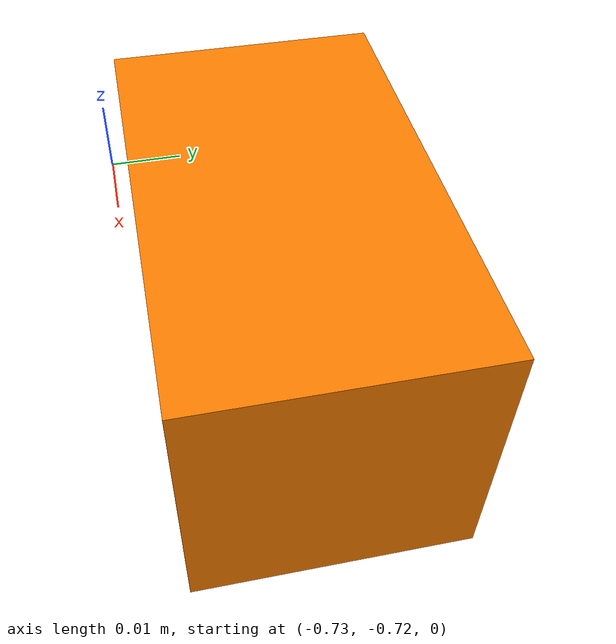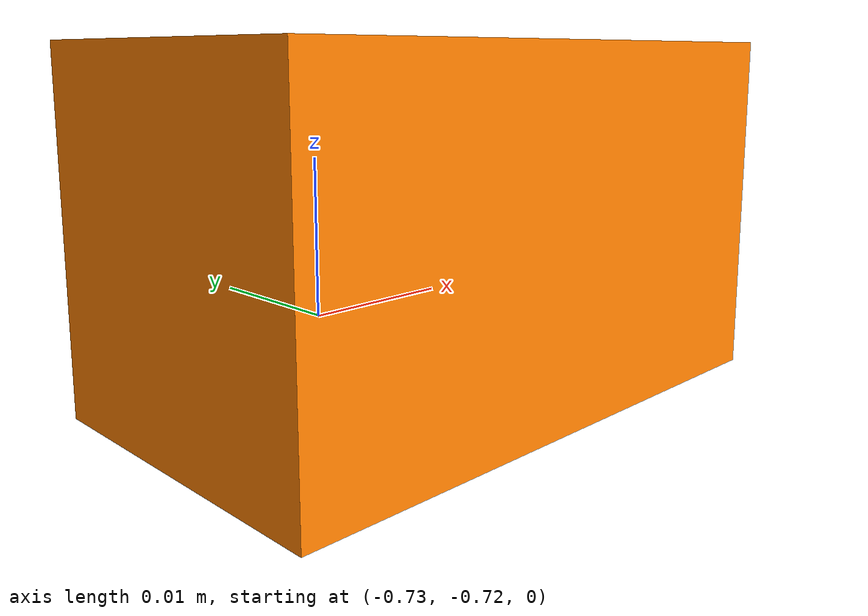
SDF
<?xml version="1.0" ?>
<sdf version='1.6'>
  <include>
    <pose>-0.7 -0.7 0.0 0 0 0</pose>
    <uri>model://Tiger</uri>
  </include>
</sdf>

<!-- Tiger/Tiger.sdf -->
<sdf version='1.6'>
  <model name='Tiger'>
    <link name="TigerLink">
      <pose frame=''>0 0 0 0 0 0</pose>
      <inertial>
        <pose frame='TigerLink'>0 0 0 0 0 0</pose>
        <mass>1.0</mass>
        <inertia>
          <ixx>0.005</ixx>
          <ixy>0.</ixy>
          <ixz>0.0</ixz>
          <iyy>0.006</iyy>
          <izz>0.003</izz>
        </inertia>
      </inertial>
      <collision name='TigerLink_collision'>
        <pose frame=''>0 0 0 0 0 0</pose>
        <geometry>
          <box>
            <size>0.06 0.035 0.035</size>
          </box>
        </geometry>
      </collision>
      <visual name='TigerLink_visual'>
        <pose frame=''>0 0 0 0 0 0</pose>
        <geometry>
          <box>
            <size>0.06 0.035 0.035</size>
          </box>
        </geometry>
        <material>
          <ambient>1.0 0.5019607843137254902 0 1.0</ambient>
        </material>
      </visual>
      <gravity>0</gravity>
      <self_collide>0</self_collide>
    </link>
  </model>
</sdf>
